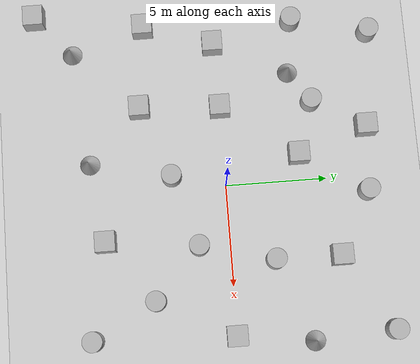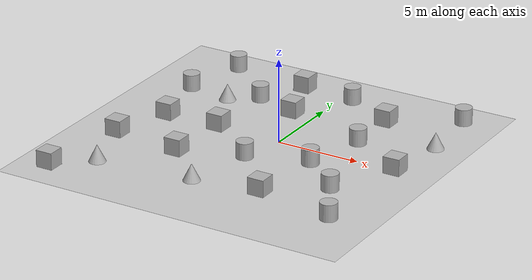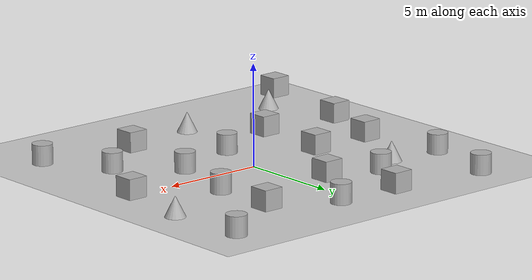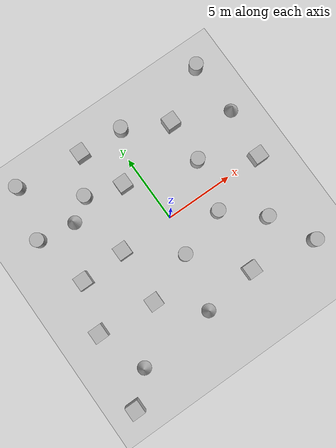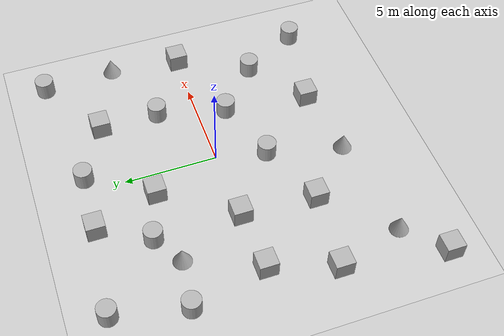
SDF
<sdf version="1.10">
 <world name="empty">
  <physics name="1ms" type="ignored">
   <max_step_size>0.001</max_step_size>
   <real_time_factor>1</real_time_factor>
   <real_time_update_rate>1000</real_time_update_rate>
  </physics>
  <plugin name="gz::sim::systems::Physics" filename="gz-sim-physics-system"/>
  <plugin name="gz::sim::systems::UserCommands" filename="gz-sim-user-commands-system"/>
  <plugin name="gz::sim::systems::SceneBroadcaster" filename="gz-sim-scene-broadcaster-system"/>
  <plugin name="gz::sim::systems::Contact" filename="gz-sim-contact-system"/>
  <plugin name="gz::sim::systems::Sensors" filename="gz-sim-sensors-system">
   <render_engine>ogre2</render_engine>
  </plugin>
  <plugin name="gz::sim::systems::Imu" filename="gz-sim-imu-system"/>
  <gravity>0 0 -9.8000000000000007</gravity>
  <magnetic_field>5.5644999999999998e-06 2.2875799999999999e-05 -4.2388400000000002e-05</magnetic_field>
  <atmosphere type="adiabatic"/>
  <scene>
   <ambient>0.400000006 0.400000006 0.400000006 1</ambient>
   <background>0.699999988 0.699999988 0.699999988 1</background>
   <shadows>true</shadows>
  </scene>
  <model name="ground_plane">
   <static>true</static>
   <link name="link">
    <collision name="collision">
     <geometry><plane><normal>0 0 1</normal><size>100 100</size></plane></geometry>
    </collision>
    <visual name="visual">
     <geometry><plane><normal>0 0 1</normal><size>100 100</size></plane></geometry>
     <material>
      <ambient>0.800000012 0.800000012 0.800000012 1</ambient>
      <diffuse>0.800000012 0.800000012 0.800000012 1</diffuse>
      <specular>0.800000012 0.800000012 0.800000012 1</specular>
     </material>
    </visual>
    <inertial>
     <mass>1</mass>
     <inertia><ixx>1</ixx><ixy>0</ixy><ixz>0</ixz><iyy>1</iyy><iyz>0</iyz><izz>1</izz></inertia>
    </inertial>
   </link>
  </model>
  <model name="box">
   <pose>3.8794999874184635 5.369271011882228 0.5 0 0 0</pose>
   <link name="box_link">
    <inertial>
     <inertia><ixx>0.16666</ixx><ixy>0</ixy><ixz>0</ixz><iyy>0.16666</iyy><iyz>0</iyz><izz>0.16666</izz></inertia>
     <mass>1</mass>
    </inertial>
    <collision name="box_collision"><geometry><box><size>1 1 1</size></box></geometry></collision>
    <visual name="box_visual">
     <geometry><box><size>1 1 1</size></box></geometry>
     <material>
      <ambient>0.300000012 0.300000012 0.300000012 1</ambient>
      <diffuse>0.699999988 0.699999988 0.699999988 1</diffuse>
      <specular>1 1 1 1</specular>
     </material>
    </visual>
   </link>
   <static>false</static>
  </model>
  <model name="box_0">
   <pose>7.3926491225085051 -0.031587432362115087 0.5 0 0 0</pose>
   <link name="box_link">
    <inertial>
     <inertia><ixx>0.16666</ixx><ixy>0</ixy><ixz>0</ixz><iyy>0.16666</iyy><iyz>0</iyz><izz>0.16666</izz></inertia>
     <mass>1</mass>
    </inertial>
    <collision name="box_collision"><geometry><box><size>1 1 1</size></box></geometry></collision>
    <visual name="box_visual">
     <geometry><box><size>1 1 1</size></box></geometry>
     <material>
      <ambient>0.300000012 0.300000012 0.300000012 1</ambient>
      <diffuse>0.699999988 0.699999988 0.699999988 1</diffuse>
      <specular>1 1 1 1</specular>
     </material>
    </visual>
   </link>
   <static>false</static>
  </model>
  <model name="box_1">
   <pose>2.4198742249520051 -6.0958447681079466 0.5 0 0 0</pose>
   <link name="box_link">
    <inertial>
     <inertia><ixx>0.16666</ixx><ixy>0</ixy><ixz>0</ixz><iyy>0.16666</iyy><iyz>0</iyz><izz>0.16666</izz></inertia>
     <mass>1</mass>
    </inertial>
    <collision name="box_collision"><geometry><box><size>1 1 1</size></box></geometry></collision>
    <visual name="box_visual">
     <geometry><box><size>1 1 1</size></box></geometry>
     <material>
      <ambient>0.300000012 0.300000012 0.300000012 1</ambient>
      <diffuse>0.699999988 0.699999988 0.699999988 1</diffuse>
      <specular>1 1 1 1</specular>
     </material>
    </visual>
   </link>
   <static>false</static>
  </model>
  <model name="box_2">
   <pose>-1.3012231222196864 3.7152651104146557 0.5 0 0 0</pose>
   <link name="box_link">
    <inertial>
     <inertia><ixx>0.16666</ixx><ixy>0</ixy><ixz>0</ixz><iyy>0.16666</iyy><iyz>0</iyz><izz>0.16666</izz></inertia>
     <mass>1</mass>
    </inertial>
    <collision name="box_collision"><geometry><box><size>1 1 1</size></box></geometry></collision>
    <visual name="box_visual">
     <geometry><box><size>1 1 1</size></box></geometry>
     <material>
      <ambient>0.300000012 0.300000012 0.300000012 1</ambient>
      <diffuse>0.699999988 0.699999988 0.699999988 1</diffuse>
      <specular>1 1 1 1</specular>
     </material>
    </visual>
   </link>
   <static>false</static>
  </model>
  <model name="box_3">
   <pose>-4.2011791239926293 -4.0415565111841953 0.5 0 0 0</pose>
   <link name="box_link">
    <inertial>
     <inertia><ixx>0.16666</ixx><ixy>0</ixy><ixz>0</ixz><iyy>0.16666</iyy><iyz>0</iyz><izz>0.16666</izz></inertia>
     <mass>1</mass>
    </inertial>
    <collision name="box_collision"><geometry><box><size>1 1 1</size></box></geometry></collision>
    <visual name="box_visual">
     <geometry><box><size>1 1 1</size></box></geometry>
     <material>
      <ambient>0.300000012 0.300000012 0.300000012 1</ambient>
      <diffuse>0.699999988 0.699999988 0.699999988 1</diffuse>
      <specular>1 1 1 1</specular>
     </material>
    </visual>
   </link>
   <static>false</static>
  </model>
  <model name="cylinder">
   <pose>-7.3604250434113956 7.7451644433123654 0.5 0 0 0</pose>
   <link name="cylinder_link">
    <inertial>
     <inertia>
      <ixx>0.14580000000000001</ixx>
      <ixy>0</ixy>
      <ixz>0</ixz>
      <iyy>0.14580000000000001</iyy>
      <iyz>0</iyz>
      <izz>0.125</izz>
     </inertia>
     <mass>1</mass>
    </inertial>
    <collision name="cylinder_collision">
     <geometry><cylinder><radius>0.5</radius><length>1</length></cylinder></geometry>
    </collision>
    <visual name="cylinder_visual">
     <geometry><cylinder><radius>0.5</radius><length>1</length></cylinder></geometry>
     <material>
      <ambient>0.300000012 0.300000012 0.300000012 1</ambient>
      <diffuse>0.699999988 0.699999988 0.699999988 1</diffuse>
      <specular>1 1 1 1</specular>
     </material>
    </visual>
   </link>
   <static>false</static>
  </model>
  <model name="cylinder_0">
   <pose>7.6423224104672016 7.6484403223986277 0.5 0 0 0</pose>
   <link name="cylinder_link">
    <inertial>
     <inertia>
      <ixx>0.14580000000000001</ixx>
      <ixy>0</ixy>
      <ixz>0</ixz>
      <iyy>0.14580000000000001</iyy>
      <iyz>0</iyz>
      <izz>0.125</izz>
     </inertia>
     <mass>1</mass>
    </inertial>
    <collision name="cylinder_collision">
     <geometry><cylinder><radius>0.5</radius><length>1</length></cylinder></geometry>
    </collision>
    <visual name="cylinder_visual">
     <geometry><cylinder><radius>0.5</radius><length>1</length></cylinder></geometry>
     <material>
      <ambient>0.300000012 0.300000012 0.300000012 1</ambient>
      <diffuse>0.699999988 0.699999988 0.699999988 1</diffuse>
      <specular>1 1 1 1</specular>
     </material>
    </visual>
   </link>
   <static>false</static>
  </model>
  <model name="box_4">
   <pose>-7.2695974914217265 -0.16473347891495194 0.5 0 0 0</pose>
   <link name="box_link">
    <inertial>
     <inertia><ixx>0.16666</ixx><ixy>0</ixy><ixz>0</ixz><iyy>0.16666</iyy><iyz>0</iyz><izz>0.16666</izz></inertia>
     <mass>1</mass>
    </inertial>
    <collision name="box_collision"><geometry><box><size>1 1 1</size></box></geometry></collision>
    <visual name="box_visual">
     <geometry><box><size>1 1 1</size></box></geometry>
     <material>
      <ambient>0.300000012 0.300000012 0.300000012 1</ambient>
      <diffuse>0.699999988 0.699999988 0.699999988 1</diffuse>
      <specular>1 1 1 1</specular>
     </material>
    </visual>
   </link>
   <static>false</static>
  </model>
  <model name="cylinder_1">
   <pose>7.1659381840181915 -6.9500449979913901 0.5 0 0 0</pose>
   <link name="cylinder_link">
    <inertial>
     <inertia>
      <ixx>0.14580000000000001</ixx>
      <ixy>0</ixy>
      <ixz>0</ixz>
      <iyy>0.14580000000000001</iyy>
      <iyz>0</iyz>
      <izz>0.125</izz>
     </inertia>
     <mass>1</mass>
    </inertial>
    <collision name="cylinder_collision">
     <geometry><cylinder><radius>0.5</radius><length>1</length></cylinder></geometry>
    </collision>
    <visual name="cylinder_visual">
     <geometry><cylinder><radius>0.5</radius><length>1</length></cylinder></geometry>
     <material>
      <ambient>0.300000012 0.300000012 0.300000012 1</ambient>
      <diffuse>0.699999988 0.699999988 0.699999988 1</diffuse>
      <specular>1 1 1 1</specular>
     </material>
    </visual>
   </link>
   <static>false</static>
  </model>
  <model name="cylinder_2">
   <pose>-0.61948532012158197 -2.6588258738775963 0.5 0 0 0</pose>
   <link name="cylinder_link">
    <inertial>
     <inertia>
      <ixx>0.14580000000000001</ixx>
      <ixy>0</ixy>
      <ixz>0</ixz>
      <iyy>0.14580000000000001</iyy>
      <iyz>0</iyz>
      <izz>0.125</izz>
     </inertia>
     <mass>1</mass>
    </inertial>
    <collision name="cylinder_collision">
     <geometry><cylinder><radius>0.5</radius><length>1</length></cylinder></geometry>
    </collision>
    <visual name="cylinder_visual">
     <geometry><cylinder><radius>0.5</radius><length>1</length></cylinder></geometry>
     <material>
      <ambient>0.300000012 0.300000012 0.300000012 1</ambient>
      <diffuse>0.699999988 0.699999988 0.699999988 1</diffuse>
      <specular>1 1 1 1</specular>
     </material>
    </visual>
   </link>
   <static>false</static>
  </model>
  <model name="box_5">
   <pose>-2.4761779615975703 7.1780927620772852 0.5 0 0 0</pose>
   <link name="box_link">
    <inertial>
     <inertia><ixx>0.16666</ixx><ixy>0</ixy><ixz>0</ixz><iyy>0.16666</iyy><iyz>0</iyz><izz>0.16666</izz></inertia>
     <mass>1</mass>
    </inertial>
    <collision name="box_collision"><geometry><box><size>1 1 1</size></box></geometry></collision>
    <visual name="box_visual">
     <geometry><box><size>1 1 1</size></box></geometry>
     <material>
      <ambient>0.300000012 0.300000012 0.300000012 1</ambient>
      <diffuse>0.699999988 0.699999988 0.699999988 1</diffuse>
      <specular>1 1 1 1</specular>
     </material>
    </visual>
   </link>
   <static>false</static>
  </model>
  <model name="cone">
   <pose>-1.5280818207423996 -6.6951511887748785 0.5 0 0 0</pose>
   <link name="cone_link">
    <inertial>
     <inertia>
      <ixx>0.074999999999999997</ixx>
      <ixy>0</ixy>
      <ixz>0</ixz>
      <iyy>0.074999999999999997</iyy>
      <iyz>0</iyz>
      <izz>0.074999999999999997</izz>
     </inertia>
     <mass>1</mass>
    </inertial>
    <collision name="cone_collision">
     <geometry><cone><radius>0.5</radius><length>1</length></cone></geometry>
    </collision>
    <visual name="cone_visual">
     <geometry><cone><radius>0.5</radius><length>1</length></cone></geometry>
     <material>
      <ambient>0.300000012 0.300000012 0.300000012 1</ambient>
      <diffuse>0.699999988 0.699999988 0.699999988 1</diffuse>
      <specular>1 1 1 1</specular>
     </material>
    </visual>
   </link>
   <static>false</static>
  </model>
  <model name="cone_0">
   <pose>-7.2977517615031484 -7.2916165787429694 0.5 0 0 0</pose>
   <link name="cone_link">
    <inertial>
     <inertia>
      <ixx>0.074999999999999997</ixx>
      <ixy>0</ixy>
      <ixz>0</ixz>
      <iyy>0.074999999999999997</iyy>
      <iyz>0</iyz>
      <izz>0.074999999999999997</izz>
     </inertia>
     <mass>1</mass>
    </inertial>
    <collision name="cone_collision">
     <geometry><cone><radius>0.5</radius><length>1</length></cone></geometry>
    </collision>
    <visual name="cone_visual">
     <geometry><cone><radius>0.5</radius><length>1</length></cone></geometry>
     <material>
      <ambient>0.300000012 0.300000012 0.300000012 1</ambient>
      <diffuse>0.699999988 0.699999988 0.699999988 1</diffuse>
      <specular>1 1 1 1</specular>
     </material>
    </visual>
   </link>
   <static>false</static>
  </model>
  <model name="cone_1">
   <pose>-5.5577793519356495 3.5548569018481011 0.5 0 0 0</pose>
   <link name="cone_link">
    <inertial>
     <inertia>
      <ixx>0.074999999999999997</ixx>
      <ixy>0</ixy>
      <ixz>0</ixz>
      <iyy>0.074999999999999997</iyy>
      <iyz>0</iyz>
      <izz>0.074999999999999997</izz>
     </inertia>
     <mass>1</mass>
    </inertial>
    <collision name="cone_collision">
     <geometry><cone><radius>0.5</radius><length>1</length></cone></geometry>
    </collision>
    <visual name="cone_visual">
     <geometry><cone><radius>0.5</radius><length>1</length></cone></geometry>
     <material>
      <ambient>0.300000012 0.300000012 0.300000012 1</ambient>
      <diffuse>0.699999988 0.699999988 0.699999988 1</diffuse>
      <specular>1 1 1 1</specular>
     </material>
    </visual>
   </link>
   <static>false</static>
  </model>
  <model name="cone_2">
   <pose>7.9124727240264061 3.7373364018722763 0.5 0 0 0</pose>
   <link name="cone_link">
    <inertial>
     <inertia>
      <ixx>0.074999999999999997</ixx>
      <ixy>0</ixy>
      <ixz>0</ixz>
      <iyy>0.074999999999999997</iyy>
      <iyz>0</iyz>
      <izz>0.074999999999999997</izz>
     </inertia>
     <mass>1</mass>
    </inertial>
    <collision name="cone_collision">
     <geometry><cone><radius>0.5</radius><length>1</length></cone></geometry>
    </collision>
    <visual name="cone_visual">
     <geometry><cone><radius>0.5</radius><length>1</length></cone></geometry>
     <material>
      <ambient>0.300000012 0.300000012 0.300000012 1</ambient>
      <diffuse>0.699999988 0.699999988 0.699999988 1</diffuse>
      <specular>1 1 1 1</specular>
     </material>
    </visual>
   </link>
   <static>false</static>
  </model>
  <model name="cylinder_3">
   <pose>2.9254628071372148 -1.5361469909772607 0.5 0 0 0</pose>
   <link name="cylinder_link">
    <inertial>
     <inertia>
      <ixx>0.14580000000000001</ixx>
      <ixy>0</ixy>
      <ixz>0</ixz>
      <iyy>0.14580000000000001</iyy>
      <iyz>0</iyz>
      <izz>0.125</izz>
     </inertia>
     <mass>1</mass>
    </inertial>
    <collision name="cylinder_collision">
     <geometry><cylinder><radius>0.5</radius><length>1</length></cylinder></geometry>
    </collision>
    <visual name="cylinder_visual">
     <geometry><cylinder><radius>0.5</radius><length>1</length></cylinder></geometry>
     <material>
      <ambient>0.300000012 0.300000012 0.300000012 1</ambient>
      <diffuse>0.699999988 0.699999988 0.699999988 1</diffuse>
      <specular>1 1 1 1</specular>
     </material>
    </visual>
   </link>
   <static>false</static>
  </model>
  <model name="box_6">
   <pose>-3.9611366509330956 -0.025660393750876476 0.5 0 0 0</pose>
   <link name="box_link">
    <inertial>
     <inertia><ixx>0.16666</ixx><ixy>0</ixy><ixz>0</ixz><iyy>0.16666</iyy><iyz>0</iyz><izz>0.16666</izz></inertia>
     <mass>1</mass>
    </inertial>
    <collision name="box_collision"><geometry><box><size>1 1 1</size></box></geometry></collision>
    <visual name="box_visual">
     <geometry><box><size>1 1 1</size></box></geometry>
     <material>
      <ambient>0.300000012 0.300000012 0.300000012 1</ambient>
      <diffuse>0.699999988 0.699999988 0.699999988 1</diffuse>
      <specular>1 1 1 1</specular>
     </material>
    </visual>
   </link>
   <static>false</static>
  </model>
  <model name="cylinder_4">
   <pose>0.78808180275012596 6.9994854527016122 0.5 0 0 0</pose>
   <link name="cylinder_link">
    <inertial>
     <inertia>
      <ixx>0.14580000000000001</ixx>
      <ixy>0</ixy>
      <ixz>0</ixz>
      <iyy>0.14580000000000001</iyy>
      <iyz>0</iyz>
      <izz>0.125</izz>
     </inertia>
     <mass>1</mass>
    </inertial>
    <collision name="cylinder_collision">
     <geometry><cylinder><radius>0.5</radius><length>1</length></cylinder></geometry>
    </collision>
    <visual name="cylinder_visual">
     <geometry><cylinder><radius>0.5</radius><length>1</length></cylinder></geometry>
     <material>
      <ambient>0.300000012 0.300000012 0.300000012 1</ambient>
      <diffuse>0.699999988 0.699999988 0.699999988 1</diffuse>
      <specular>1 1 1 1</specular>
     </material>
    </visual>
   </link>
   <static>false</static>
  </model>
  <model name="cylinder_5">
   <pose>3.8558973147723514 2.1537373198644345 0.5 0 0 0</pose>
   <link name="cylinder_link">
    <inertial>
     <inertia>
      <ixx>0.14580000000000001</ixx>
      <ixy>0</ixy>
      <ixz>0</ixz>
      <iyy>0.14580000000000001</iyy>
      <iyz>0</iyz>
      <izz>0.125</izz>
     </inertia>
     <mass>1</mass>
    </inertial>
    <collision name="cylinder_collision">
     <geometry><cylinder><radius>0.5</radius><length>1</length></cylinder></geometry>
    </collision>
    <visual name="cylinder_visual">
     <geometry><cylinder><radius>0.5</radius><length>1</length></cylinder></geometry>
     <material>
      <ambient>0.300000012 0.300000012 0.300000012 1</ambient>
      <diffuse>0.699999988 0.699999988 0.699999988 1</diffuse>
      <specular>1 1 1 1</specular>
     </material>
    </visual>
   </link>
   <static>false</static>
  </model>
  <model name="cylinder_6">
   <pose>5.4656590636280438 -3.8122408553716145 0.5 0 0 0</pose>
   <link name="cylinder_link">
    <inertial>
     <inertia>
      <ixx>0.14580000000000001</ixx>
      <ixy>0</ixy>
      <ixz>0</ixz>
      <iyy>0.14580000000000001</iyy>
      <iyz>0</iyz>
      <izz>0.125</izz>
     </inertia>
     <mass>1</mass>
    </inertial>
    <collision name="cylinder_collision">
     <geometry><cylinder><radius>0.5</radius><length>1</length></cylinder></geometry>
    </collision>
    <visual name="cylinder_visual">
     <geometry><cylinder><radius>0.5</radius><length>1</length></cylinder></geometry>
     <material>
      <ambient>0.300000012 0.300000012 0.300000012 1</ambient>
      <diffuse>0.699999988 0.699999988 0.699999988 1</diffuse>
      <specular>1 1 1 1</specular>
     </material>
    </visual>
   </link>
   <static>false</static>
  </model>
  <model name="cylinder_7">
   <pose>-3.9400348753358996 4.5572890268540593 0.5 0 0 0</pose>
   <link name="cylinder_link">
    <inertial>
     <inertia>
      <ixx>0.14580000000000001</ixx>
      <ixy>0</ixy>
      <ixz>0</ixz>
      <iyy>0.14580000000000001</iyy>
      <iyz>0</iyz>
      <izz>0.125</izz>
     </inertia>
     <mass>1</mass>
    </inertial>
    <collision name="cylinder_collision">
     <geometry><cylinder><radius>0.5</radius><length>1</length></cylinder></geometry>
    </collision>
    <visual name="cylinder_visual">
     <geometry><cylinder><radius>0.5</radius><length>1</length></cylinder></geometry>
     <material>
      <ambient>0.300000012 0.300000012 0.300000012 1</ambient>
      <diffuse>0.699999988 0.699999988 0.699999988 1</diffuse>
      <specular>1 1 1 1</specular>
     </material>
    </visual>
   </link>
   <static>false</static>
  </model>
  <model name="cylinder_8">
   <pose>-8.226293441315887 3.8944110867109654 0.5 0 0 0</pose>
   <link name="cylinder_link">
    <inertial>
     <inertia>
      <ixx>0.14580000000000001</ixx>
      <ixy>0</ixy>
      <ixz>0</ixz>
      <iyy>0.14580000000000001</iyy>
      <iyz>0</iyz>
      <izz>0.125</izz>
     </inertia>
     <mass>1</mass>
    </inertial>
    <collision name="cylinder_collision">
     <geometry><cylinder><radius>0.5</radius><length>1</length></cylinder></geometry>
    </collision>
    <visual name="cylinder_visual">
     <geometry><cylinder><radius>0.5</radius><length>1</length></cylinder></geometry>
     <material>
      <ambient>0.300000012 0.300000012 0.300000012 1</ambient>
      <diffuse>0.699999988 0.699999988 0.699999988 1</diffuse>
      <specular>1 1 1 1</specular>
     </material>
    </visual>
   </link>
   <static>false</static>
  </model>
  <model name="box_7">
   <pose>-8.4114870754418014 -3.629440640931457 0.5 0 0 0</pose>
   <link name="box_link">
    <inertial>
     <inertia><ixx>0.16666</ixx><ixy>0</ixy><ixz>0</ixz><iyy>0.16666</iyy><iyz>0</iyz><izz>0.16666</izz></inertia>
     <mass>1</mass>
    </inertial>
    <collision name="box_collision"><geometry><box><size>1 1 1</size></box></geometry></collision>
    <visual name="box_visual">
     <geometry><box><size>1 1 1</size></box></geometry>
     <material>
      <ambient>0.300000012 0.300000012 0.300000012 1</ambient>
      <diffuse>0.699999988 0.699999988 0.699999988 1</diffuse>
      <specular>1 1 1 1</specular>
     </material>
    </visual>
   </link>
   <static>false</static>
  </model>
  <model name="box_8">
   <pose>-9.2717531363387202 -9.0893523301417414 0.5 0 0 0</pose>
   <link name="box_link">
    <inertial>
     <inertia><ixx>0.16666</ixx><ixy>0</ixy><ixz>0</ixz><iyy>0.16666</iyy><iyz>0</iyz><izz>0.16666</izz></inertia>
     <mass>1</mass>
    </inertial>
    <collision name="box_collision"><geometry><box><size>1 1 1</size></box></geometry></collision>
    <visual name="box_visual">
     <geometry><box><size>1 1 1</size></box></geometry>
     <material>
      <ambient>0.300000012 0.300000012 0.300000012 1</ambient>
      <diffuse>0.699999988 0.699999988 0.699999988 1</diffuse>
      <specular>1 1 1 1</specular>
     </material>
    </visual>
   </link>
   <static>false</static>
  </model>
  <light name="sun" type="directional">
   <pose>0 0 10 0 0 0</pose>
   <intensity>1</intensity>
   <direction>-0.5 0.10000000000000001 -0.90000000000000002</direction>
   <diffuse>0.800000012 0.800000012 0.800000012 1</diffuse>
   <specular>0.200000003 0.200000003 0.200000003 1</specular>
   <attenuation>
    <range>1000</range>
    <linear>0.01</linear>
    <constant>0.90000000000000002</constant>
    <quadratic>0.001</quadratic>
   </attenuation>
   <spot><inner_angle>0</inner_angle><outer_angle>0</outer_angle><falloff>0</falloff></spot>
  </light>
 </world>
</sdf>
